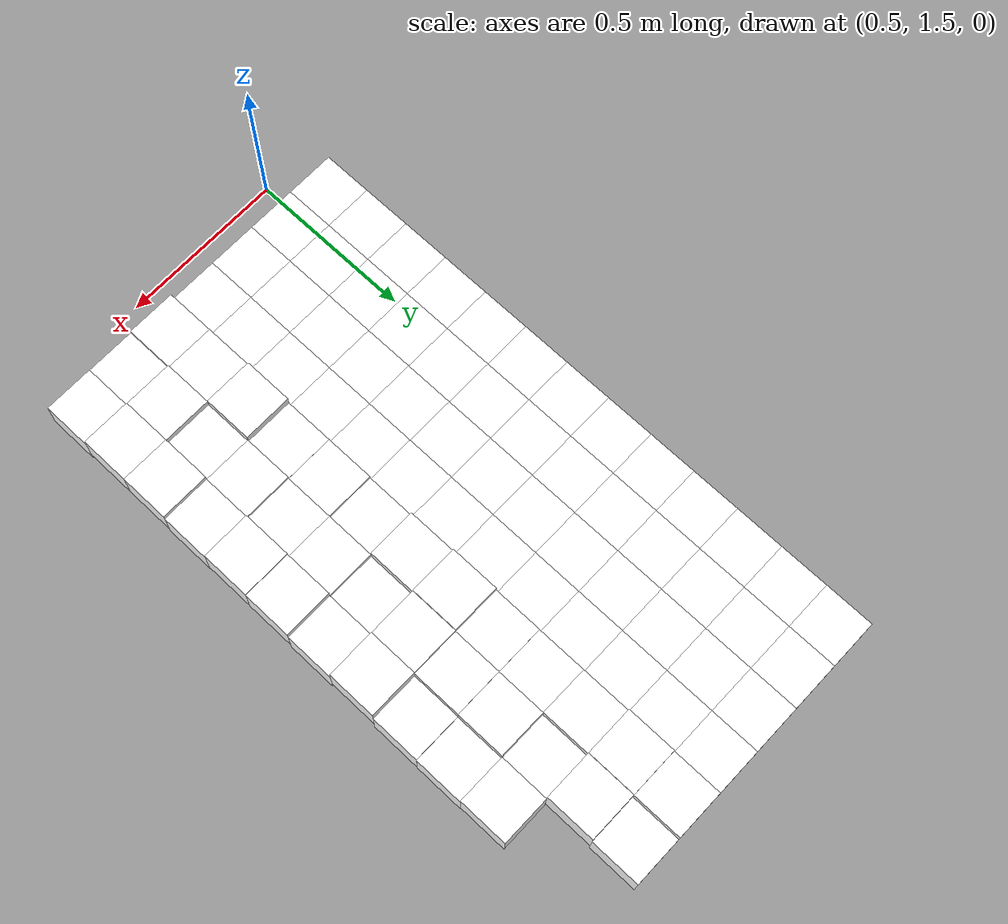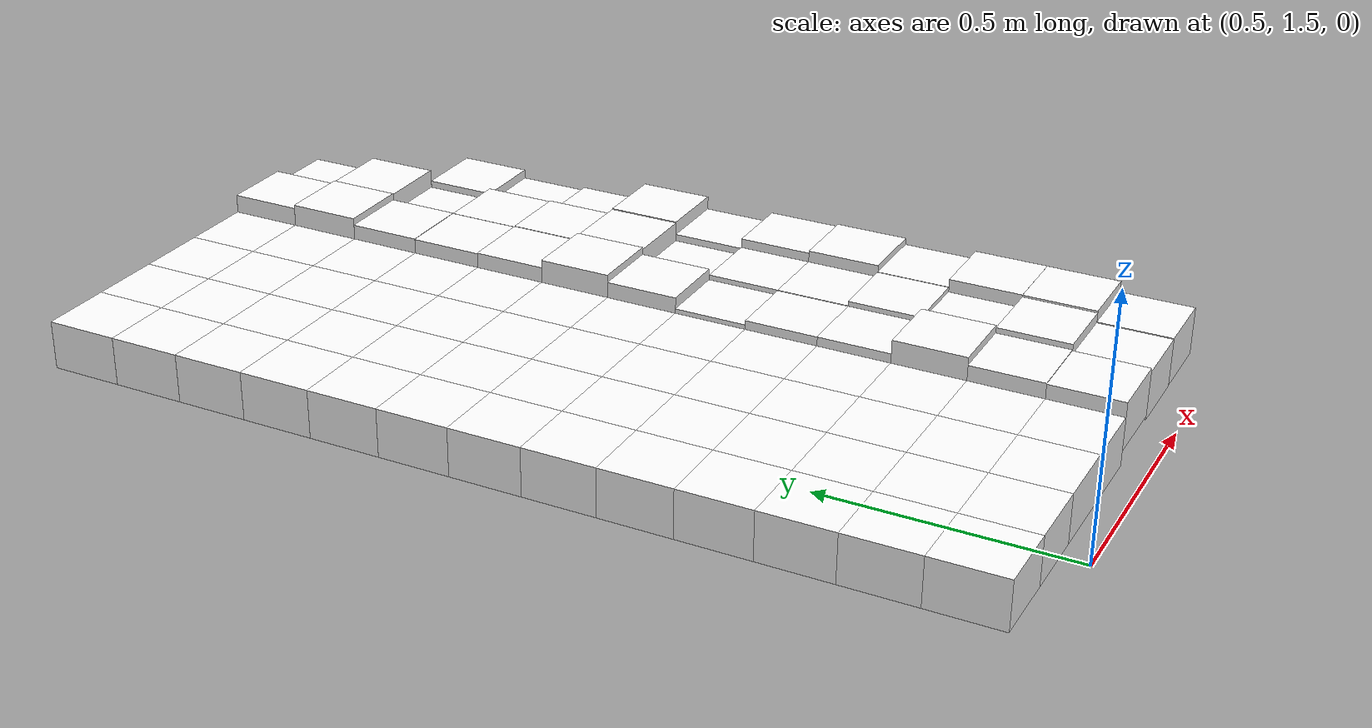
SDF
<sdf version="1.7">
 <world name="default">
  <include><uri>model://sun</uri></include>
  <model name="static_environment">
   <static>true</static>
   <link name="region_156">
    <pose>0.39999999999999947 1.65 0.0 0.0 0.0 0.0</pose>
    <collision name="region_156_collision">
     <geometry><box><size>0.15 0.15 0.1</size></box></geometry>
     <surface><friction><ode><mu>1.0</mu><mu2>1.0</mu2></ode></friction></surface>
    </collision>
    <visual name="region_156_visual">
     <geometry><box><size>0.15 0.15 0.1</size></box></geometry>
     <material><ambient>1.0 1.0 1.0 1.0</ambient><diffuse>1.0 1.0 1.0 1.0</diffuse></material>
    </visual>
   </link>
   <link name="region_157">
    <pose>0.5499999999999994 1.65 0.0 0.0 0.0 0.0</pose>
    <collision name="region_157_collision">
     <geometry><box><size>0.15 0.15 0.1</size></box></geometry>
     <surface><friction><ode><mu>1.0</mu><mu2>1.0</mu2></ode></friction></surface>
    </collision>
    <visual name="region_157_visual">
     <geometry><box><size>0.15 0.15 0.1</size></box></geometry>
     <material><ambient>1.0 1.0 1.0 1.0</ambient><diffuse>1.0 1.0 1.0 1.0</diffuse></material>
    </visual>
   </link>
   <link name="region_158">
    <pose>0.6999999999999993 1.65 0.0 0.0 0.0 0.0</pose>
    <collision name="region_158_collision">
     <geometry><box><size>0.15 0.15 0.1</size></box></geometry>
     <surface><friction><ode><mu>1.0</mu><mu2>1.0</mu2></ode></friction></surface>
    </collision>
    <visual name="region_158_visual">
     <geometry><box><size>0.15 0.15 0.1</size></box></geometry>
     <material><ambient>1.0 1.0 1.0 1.0</ambient><diffuse>1.0 1.0 1.0 1.0</diffuse></material>
    </visual>
   </link>
   <link name="region_159">
    <pose>0.8499999999999992 1.65 0.0 0.0 0.0 0.0</pose>
    <collision name="region_159_collision">
     <geometry><box><size>0.15 0.15 0.1</size></box></geometry>
     <surface><friction><ode><mu>1.0</mu><mu2>1.0</mu2></ode></friction></surface>
    </collision>
    <visual name="region_159_visual">
     <geometry><box><size>0.15 0.15 0.1</size></box></geometry>
     <material><ambient>1.0 1.0 1.0 1.0</ambient><diffuse>1.0 1.0 1.0 1.0</diffuse></material>
    </visual>
   </link>
   <link name="region_176">
    <pose>0.39999999999999947 1.7999999999999998 0.0 0.0 0.0 0.0</pose>
    <collision name="region_176_collision">
     <geometry><box><size>0.15 0.15 0.1</size></box></geometry>
     <surface><friction><ode><mu>1.0</mu><mu2>1.0</mu2></ode></friction></surface>
    </collision>
    <visual name="region_176_visual">
     <geometry><box><size>0.15 0.15 0.1</size></box></geometry>
     <material><ambient>1.0 1.0 1.0 1.0</ambient><diffuse>1.0 1.0 1.0 1.0</diffuse></material>
    </visual>
   </link>
   <link name="region_177">
    <pose>0.5499999999999994 1.7999999999999998 0.0 0.0 0.0 0.0</pose>
    <collision name="region_177_collision">
     <geometry><box><size>0.15 0.15 0.1</size></box></geometry>
     <surface><friction><ode><mu>1.0</mu><mu2>1.0</mu2></ode></friction></surface>
    </collision>
    <visual name="region_177_visual">
     <geometry><box><size>0.15 0.15 0.1</size></box></geometry>
     <material><ambient>1.0 1.0 1.0 1.0</ambient><diffuse>1.0 1.0 1.0 1.0</diffuse></material>
    </visual>
   </link>
   <link name="region_178">
    <pose>0.6999999999999993 1.7999999999999998 0.0 0.0 0.0 0.0</pose>
    <collision name="region_178_collision">
     <geometry><box><size>0.15 0.15 0.1</size></box></geometry>
     <surface><friction><ode><mu>1.0</mu><mu2>1.0</mu2></ode></friction></surface>
    </collision>
    <visual name="region_178_visual">
     <geometry><box><size>0.15 0.15 0.1</size></box></geometry>
     <material><ambient>1.0 1.0 1.0 1.0</ambient><diffuse>1.0 1.0 1.0 1.0</diffuse></material>
    </visual>
   </link>
   <link name="region_179">
    <pose>0.8499999999999992 1.7999999999999998 0.0 0.0 0.0 0.0</pose>
    <collision name="region_179_collision">
     <geometry><box><size>0.15 0.15 0.1</size></box></geometry>
     <surface><friction><ode><mu>1.0</mu><mu2>1.0</mu2></ode></friction></surface>
    </collision>
    <visual name="region_179_visual">
     <geometry><box><size>0.15 0.15 0.1</size></box></geometry>
     <material><ambient>1.0 1.0 1.0 1.0</ambient><diffuse>1.0 1.0 1.0 1.0</diffuse></material>
    </visual>
   </link>
   <link name="region_196">
    <pose>0.39999999999999947 1.9499999999999997 0.0 0.0 0.0 0.0</pose>
    <collision name="region_196_collision">
     <geometry><box><size>0.15 0.15 0.1</size></box></geometry>
     <surface><friction><ode><mu>1.0</mu><mu2>1.0</mu2></ode></friction></surface>
    </collision>
    <visual name="region_196_visual">
     <geometry><box><size>0.15 0.15 0.1</size></box></geometry>
     <material><ambient>1.0 1.0 1.0 1.0</ambient><diffuse>1.0 1.0 1.0 1.0</diffuse></material>
    </visual>
   </link>
   <link name="region_197">
    <pose>0.5499999999999994 1.9499999999999997 0.0 0.0 0.0 0.0</pose>
    <collision name="region_197_collision">
     <geometry><box><size>0.15 0.15 0.1</size></box></geometry>
     <surface><friction><ode><mu>1.0</mu><mu2>1.0</mu2></ode></friction></surface>
    </collision>
    <visual name="region_197_visual">
     <geometry><box><size>0.15 0.15 0.1</size></box></geometry>
     <material><ambient>1.0 1.0 1.0 1.0</ambient><diffuse>1.0 1.0 1.0 1.0</diffuse></material>
    </visual>
   </link>
   <link name="region_198">
    <pose>0.6999999999999993 1.9499999999999997 0.0 0.0 0.0 0.0</pose>
    <collision name="region_198_collision">
     <geometry><box><size>0.15 0.15 0.1</size></box></geometry>
     <surface><friction><ode><mu>1.0</mu><mu2>1.0</mu2></ode></friction></surface>
    </collision>
    <visual name="region_198_visual">
     <geometry><box><size>0.15 0.15 0.1</size></box></geometry>
     <material><ambient>1.0 1.0 1.0 1.0</ambient><diffuse>1.0 1.0 1.0 1.0</diffuse></material>
    </visual>
   </link>
   <link name="region_199">
    <pose>0.8499999999999992 1.9499999999999997 0.0 0.0 0.0 0.0</pose>
    <collision name="region_199_collision">
     <geometry><box><size>0.15 0.15 0.1</size></box></geometry>
     <surface><friction><ode><mu>1.0</mu><mu2>1.0</mu2></ode></friction></surface>
    </collision>
    <visual name="region_199_visual">
     <geometry><box><size>0.15 0.15 0.1</size></box></geometry>
     <material><ambient>1.0 1.0 1.0 1.0</ambient><diffuse>1.0 1.0 1.0 1.0</diffuse></material>
    </visual>
   </link>
   <link name="region_216">
    <pose>0.39999999999999947 2.0999999999999996 0.0 0.0 0.0 0.0</pose>
    <collision name="region_216_collision">
     <geometry><box><size>0.15 0.15 0.1</size></box></geometry>
     <surface><friction><ode><mu>1.0</mu><mu2>1.0</mu2></ode></friction></surface>
    </collision>
    <visual name="region_216_visual">
     <geometry><box><size>0.15 0.15 0.1</size></box></geometry>
     <material><ambient>1.0 1.0 1.0 1.0</ambient><diffuse>1.0 1.0 1.0 1.0</diffuse></material>
    </visual>
   </link>
   <link name="region_217">
    <pose>0.5499999999999994 2.0999999999999996 0.0 0.0 0.0 0.0</pose>
    <collision name="region_217_collision">
     <geometry><box><size>0.15 0.15 0.1</size></box></geometry>
     <surface><friction><ode><mu>1.0</mu><mu2>1.0</mu2></ode></friction></surface>
    </collision>
    <visual name="region_217_visual">
     <geometry><box><size>0.15 0.15 0.1</size></box></geometry>
     <material><ambient>1.0 1.0 1.0 1.0</ambient><diffuse>1.0 1.0 1.0 1.0</diffuse></material>
    </visual>
   </link>
   <link name="region_218">
    <pose>0.6999999999999993 2.0999999999999996 0.0 0.0 0.0 0.0</pose>
    <collision name="region_218_collision">
     <geometry><box><size>0.15 0.15 0.1</size></box></geometry>
     <surface><friction><ode><mu>1.0</mu><mu2>1.0</mu2></ode></friction></surface>
    </collision>
    <visual name="region_218_visual">
     <geometry><box><size>0.15 0.15 0.1</size></box></geometry>
     <material><ambient>1.0 1.0 1.0 1.0</ambient><diffuse>1.0 1.0 1.0 1.0</diffuse></material>
    </visual>
   </link>
   <link name="region_219">
    <pose>0.8499999999999992 2.0999999999999996 0.0 0.0 0.0 0.0</pose>
    <collision name="region_219_collision">
     <geometry><box><size>0.15 0.15 0.1</size></box></geometry>
     <surface><friction><ode><mu>1.0</mu><mu2>1.0</mu2></ode></friction></surface>
    </collision>
    <visual name="region_219_visual">
     <geometry><box><size>0.15 0.15 0.1</size></box></geometry>
     <material><ambient>1.0 1.0 1.0 1.0</ambient><diffuse>1.0 1.0 1.0 1.0</diffuse></material>
    </visual>
   </link>
   <link name="region_236">
    <pose>0.39999999999999947 2.2499999999999996 0.0 0.0 0.0 0.0</pose>
    <collision name="region_236_collision">
     <geometry><box><size>0.15 0.15 0.1</size></box></geometry>
     <surface><friction><ode><mu>1.0</mu><mu2>1.0</mu2></ode></friction></surface>
    </collision>
    <visual name="region_236_visual">
     <geometry><box><size>0.15 0.15 0.1</size></box></geometry>
     <material><ambient>1.0 1.0 1.0 1.0</ambient><diffuse>1.0 1.0 1.0 1.0</diffuse></material>
    </visual>
   </link>
   <link name="region_237">
    <pose>0.5499999999999994 2.2499999999999996 0.0 0.0 0.0 0.0</pose>
    <collision name="region_237_collision">
     <geometry><box><size>0.15 0.15 0.1</size></box></geometry>
     <surface><friction><ode><mu>1.0</mu><mu2>1.0</mu2></ode></friction></surface>
    </collision>
    <visual name="region_237_visual">
     <geometry><box><size>0.15 0.15 0.1</size></box></geometry>
     <material><ambient>1.0 1.0 1.0 1.0</ambient><diffuse>1.0 1.0 1.0 1.0</diffuse></material>
    </visual>
   </link>
   <link name="region_238">
    <pose>0.6999999999999993 2.2499999999999996 0.0 0.0 0.0 0.0</pose>
    <collision name="region_238_collision">
     <geometry><box><size>0.15 0.15 0.1</size></box></geometry>
     <surface><friction><ode><mu>1.0</mu><mu2>1.0</mu2></ode></friction></surface>
    </collision>
    <visual name="region_238_visual">
     <geometry><box><size>0.15 0.15 0.1</size></box></geometry>
     <material><ambient>1.0 1.0 1.0 1.0</ambient><diffuse>1.0 1.0 1.0 1.0</diffuse></material>
    </visual>
   </link>
   <link name="region_239">
    <pose>0.8499999999999992 2.2499999999999996 0.0 0.0 0.0 0.0</pose>
    <collision name="region_239_collision">
     <geometry><box><size>0.15 0.15 0.1</size></box></geometry>
     <surface><friction><ode><mu>1.0</mu><mu2>1.0</mu2></ode></friction></surface>
    </collision>
    <visual name="region_239_visual">
     <geometry><box><size>0.15 0.15 0.1</size></box></geometry>
     <material><ambient>1.0 1.0 1.0 1.0</ambient><diffuse>1.0 1.0 1.0 1.0</diffuse></material>
    </visual>
   </link>
   <link name="region_256">
    <pose>0.39999999999999947 2.3999999999999995 0.0 0.0 0.0 0.0</pose>
    <collision name="region_256_collision">
     <geometry><box><size>0.15 0.15 0.1</size></box></geometry>
     <surface><friction><ode><mu>1.0</mu><mu2>1.0</mu2></ode></friction></surface>
    </collision>
    <visual name="region_256_visual">
     <geometry><box><size>0.15 0.15 0.1</size></box></geometry>
     <material><ambient>1.0 1.0 1.0 1.0</ambient><diffuse>1.0 1.0 1.0 1.0</diffuse></material>
    </visual>
   </link>
   <link name="region_257">
    <pose>0.5499999999999994 2.3999999999999995 0.0 0.0 0.0 0.0</pose>
    <collision name="region_257_collision">
     <geometry><box><size>0.15 0.15 0.1</size></box></geometry>
     <surface><friction><ode><mu>1.0</mu><mu2>1.0</mu2></ode></friction></surface>
    </collision>
    <visual name="region_257_visual">
     <geometry><box><size>0.15 0.15 0.1</size></box></geometry>
     <material><ambient>1.0 1.0 1.0 1.0</ambient><diffuse>1.0 1.0 1.0 1.0</diffuse></material>
    </visual>
   </link>
   <link name="region_258">
    <pose>0.6999999999999993 2.3999999999999995 0.0 0.0 0.0 0.0</pose>
    <collision name="region_258_collision">
     <geometry><box><size>0.15 0.15 0.1</size></box></geometry>
     <surface><friction><ode><mu>1.0</mu><mu2>1.0</mu2></ode></friction></surface>
    </collision>
    <visual name="region_258_visual">
     <geometry><box><size>0.15 0.15 0.1</size></box></geometry>
     <material><ambient>1.0 1.0 1.0 1.0</ambient><diffuse>1.0 1.0 1.0 1.0</diffuse></material>
    </visual>
   </link>
   <link name="region_259">
    <pose>0.8499999999999992 2.3999999999999995 0.0 0.0 0.0 0.0</pose>
    <collision name="region_259_collision">
     <geometry><box><size>0.15 0.15 0.1</size></box></geometry>
     <surface><friction><ode><mu>1.0</mu><mu2>1.0</mu2></ode></friction></surface>
    </collision>
    <visual name="region_259_visual">
     <geometry><box><size>0.15 0.15 0.1</size></box></geometry>
     <material><ambient>1.0 1.0 1.0 1.0</ambient><diffuse>1.0 1.0 1.0 1.0</diffuse></material>
    </visual>
   </link>
   <link name="region_276">
    <pose>0.39999999999999947 2.5499999999999994 0.0 0.0 0.0 0.0</pose>
    <collision name="region_276_collision">
     <geometry><box><size>0.15 0.15 0.1</size></box></geometry>
     <surface><friction><ode><mu>1.0</mu><mu2>1.0</mu2></ode></friction></surface>
    </collision>
    <visual name="region_276_visual">
     <geometry><box><size>0.15 0.15 0.1</size></box></geometry>
     <material><ambient>1.0 1.0 1.0 1.0</ambient><diffuse>1.0 1.0 1.0 1.0</diffuse></material>
    </visual>
   </link>
   <link name="region_277">
    <pose>0.5499999999999994 2.5499999999999994 0.0 0.0 0.0 0.0</pose>
    <collision name="region_277_collision">
     <geometry><box><size>0.15 0.15 0.1</size></box></geometry>
     <surface><friction><ode><mu>1.0</mu><mu2>1.0</mu2></ode></friction></surface>
    </collision>
    <visual name="region_277_visual">
     <geometry><box><size>0.15 0.15 0.1</size></box></geometry>
     <material><ambient>1.0 1.0 1.0 1.0</ambient><diffuse>1.0 1.0 1.0 1.0</diffuse></material>
    </visual>
   </link>
   <link name="region_278">
    <pose>0.6999999999999993 2.5499999999999994 0.0 0.0 0.0 0.0</pose>
    <collision name="region_278_collision">
     <geometry><box><size>0.15 0.15 0.1</size></box></geometry>
     <surface><friction><ode><mu>1.0</mu><mu2>1.0</mu2></ode></friction></surface>
    </collision>
    <visual name="region_278_visual">
     <geometry><box><size>0.15 0.15 0.1</size></box></geometry>
     <material><ambient>1.0 1.0 1.0 1.0</ambient><diffuse>1.0 1.0 1.0 1.0</diffuse></material>
    </visual>
   </link>
   <link name="region_279">
    <pose>0.8499999999999992 2.5499999999999994 0.0 0.0 0.0 0.0</pose>
    <collision name="region_279_collision">
     <geometry><box><size>0.15 0.15 0.1</size></box></geometry>
     <surface><friction><ode><mu>1.0</mu><mu2>1.0</mu2></ode></friction></surface>
    </collision>
    <visual name="region_279_visual">
     <geometry><box><size>0.15 0.15 0.1</size></box></geometry>
     <material><ambient>1.0 1.0 1.0 1.0</ambient><diffuse>1.0 1.0 1.0 1.0</diffuse></material>
    </visual>
   </link>
   <link name="region_296">
    <pose>0.39999999999999947 2.6999999999999997 0.0 0.0 0.0 0.0</pose>
    <collision name="region_296_collision">
     <geometry><box><size>0.15 0.15 0.1</size></box></geometry>
     <surface><friction><ode><mu>1.0</mu><mu2>1.0</mu2></ode></friction></surface>
    </collision>
    <visual name="region_296_visual">
     <geometry><box><size>0.15 0.15 0.1</size></box></geometry>
     <material><ambient>1.0 1.0 1.0 1.0</ambient><diffuse>1.0 1.0 1.0 1.0</diffuse></material>
    </visual>
   </link>
   <link name="region_297">
    <pose>0.5499999999999994 2.6999999999999997 0.0 0.0 0.0 0.0</pose>
    <collision name="region_297_collision">
     <geometry><box><size>0.15 0.15 0.1</size></box></geometry>
     <surface><friction><ode><mu>1.0</mu><mu2>1.0</mu2></ode></friction></surface>
    </collision>
    <visual name="region_297_visual">
     <geometry><box><size>0.15 0.15 0.1</size></box></geometry>
     <material><ambient>1.0 1.0 1.0 1.0</ambient><diffuse>1.0 1.0 1.0 1.0</diffuse></material>
    </visual>
   </link>
   <link name="region_298">
    <pose>0.6999999999999993 2.6999999999999997 0.0 0.0 0.0 0.0</pose>
    <collision name="region_298_collision">
     <geometry><box><size>0.15 0.15 0.1</size></box></geometry>
     <surface><friction><ode><mu>1.0</mu><mu2>1.0</mu2></ode></friction></surface>
    </collision>
    <visual name="region_298_visual">
     <geometry><box><size>0.15 0.15 0.1</size></box></geometry>
     <material><ambient>1.0 1.0 1.0 1.0</ambient><diffuse>1.0 1.0 1.0 1.0</diffuse></material>
    </visual>
   </link>
   <link name="region_299">
    <pose>0.8499999999999992 2.6999999999999997 0.0 0.0 0.0 0.0</pose>
    <collision name="region_299_collision">
     <geometry><box><size>0.15 0.15 0.1</size></box></geometry>
     <surface><friction><ode><mu>1.0</mu><mu2>1.0</mu2></ode></friction></surface>
    </collision>
    <visual name="region_299_visual">
     <geometry><box><size>0.15 0.15 0.1</size></box></geometry>
     <material><ambient>1.0 1.0 1.0 1.0</ambient><diffuse>1.0 1.0 1.0 1.0</diffuse></material>
    </visual>
   </link>
   <link name="region_316">
    <pose>0.39999999999999947 2.8499999999999996 0.0 0.0 0.0 0.0</pose>
    <collision name="region_316_collision">
     <geometry><box><size>0.15 0.15 0.1</size></box></geometry>
     <surface><friction><ode><mu>1.0</mu><mu2>1.0</mu2></ode></friction></surface>
    </collision>
    <visual name="region_316_visual">
     <geometry><box><size>0.15 0.15 0.1</size></box></geometry>
     <material><ambient>1.0 1.0 1.0 1.0</ambient><diffuse>1.0 1.0 1.0 1.0</diffuse></material>
    </visual>
   </link>
   <link name="region_317">
    <pose>0.5499999999999994 2.8499999999999996 0.0 0.0 0.0 0.0</pose>
    <collision name="region_317_collision">
     <geometry><box><size>0.15 0.15 0.1</size></box></geometry>
     <surface><friction><ode><mu>1.0</mu><mu2>1.0</mu2></ode></friction></surface>
    </collision>
    <visual name="region_317_visual">
     <geometry><box><size>0.15 0.15 0.1</size></box></geometry>
     <material><ambient>1.0 1.0 1.0 1.0</ambient><diffuse>1.0 1.0 1.0 1.0</diffuse></material>
    </visual>
   </link>
   <link name="region_318">
    <pose>0.6999999999999993 2.8499999999999996 0.0 0.0 0.0 0.0</pose>
    <collision name="region_318_collision">
     <geometry><box><size>0.15 0.15 0.1</size></box></geometry>
     <surface><friction><ode><mu>1.0</mu><mu2>1.0</mu2></ode></friction></surface>
    </collision>
    <visual name="region_318_visual">
     <geometry><box><size>0.15 0.15 0.1</size></box></geometry>
     <material><ambient>1.0 1.0 1.0 1.0</ambient><diffuse>1.0 1.0 1.0 1.0</diffuse></material>
    </visual>
   </link>
   <link name="region_319">
    <pose>0.8499999999999992 2.8499999999999996 0.0 0.0 0.0 0.0</pose>
    <collision name="region_319_collision">
     <geometry><box><size>0.15 0.15 0.1</size></box></geometry>
     <surface><friction><ode><mu>1.0</mu><mu2>1.0</mu2></ode></friction></surface>
    </collision>
    <visual name="region_319_visual">
     <geometry><box><size>0.15 0.15 0.1</size></box></geometry>
     <material><ambient>1.0 1.0 1.0 1.0</ambient><diffuse>1.0 1.0 1.0 1.0</diffuse></material>
    </visual>
   </link>
   <link name="region_336">
    <pose>0.39999999999999947 2.9999999999999996 0.0 0.0 0.0 0.0</pose>
    <collision name="region_336_collision">
     <geometry><box><size>0.15 0.15 0.1</size></box></geometry>
     <surface><friction><ode><mu>1.0</mu><mu2>1.0</mu2></ode></friction></surface>
    </collision>
    <visual name="region_336_visual">
     <geometry><box><size>0.15 0.15 0.1</size></box></geometry>
     <material><ambient>1.0 1.0 1.0 1.0</ambient><diffuse>1.0 1.0 1.0 1.0</diffuse></material>
    </visual>
   </link>
   <link name="region_337">
    <pose>0.5499999999999994 2.9999999999999996 0.0 0.0 0.0 0.0</pose>
    <collision name="region_337_collision">
     <geometry><box><size>0.15 0.15 0.1</size></box></geometry>
     <surface><friction><ode><mu>1.0</mu><mu2>1.0</mu2></ode></friction></surface>
    </collision>
    <visual name="region_337_visual">
     <geometry><box><size>0.15 0.15 0.1</size></box></geometry>
     <material><ambient>1.0 1.0 1.0 1.0</ambient><diffuse>1.0 1.0 1.0 1.0</diffuse></material>
    </visual>
   </link>
   <link name="region_338">
    <pose>0.6999999999999993 2.9999999999999996 0.0 0.0 0.0 0.0</pose>
    <collision name="region_338_collision">
     <geometry><box><size>0.15 0.15 0.1</size></box></geometry>
     <surface><friction><ode><mu>1.0</mu><mu2>1.0</mu2></ode></friction></surface>
    </collision>
    <visual name="region_338_visual">
     <geometry><box><size>0.15 0.15 0.1</size></box></geometry>
     <material><ambient>1.0 1.0 1.0 1.0</ambient><diffuse>1.0 1.0 1.0 1.0</diffuse></material>
    </visual>
   </link>
   <link name="region_339">
    <pose>0.8499999999999992 2.9999999999999996 0.0 0.0 0.0 0.0</pose>
    <collision name="region_339_collision">
     <geometry><box><size>0.15 0.15 0.1</size></box></geometry>
     <surface><friction><ode><mu>1.0</mu><mu2>1.0</mu2></ode></friction></surface>
    </collision>
    <visual name="region_339_visual">
     <geometry><box><size>0.15 0.15 0.1</size></box></geometry>
     <material><ambient>1.0 1.0 1.0 1.0</ambient><diffuse>1.0 1.0 1.0 1.0</diffuse></material>
    </visual>
   </link>
   <link name="region_356">
    <pose>0.39999999999999947 3.1499999999999995 0.0 0.0 0.0 0.0</pose>
    <collision name="region_356_collision">
     <geometry><box><size>0.15 0.15 0.1</size></box></geometry>
     <surface><friction><ode><mu>1.0</mu><mu2>1.0</mu2></ode></friction></surface>
    </collision>
    <visual name="region_356_visual">
     <geometry><box><size>0.15 0.15 0.1</size></box></geometry>
     <material><ambient>1.0 1.0 1.0 1.0</ambient><diffuse>1.0 1.0 1.0 1.0</diffuse></material>
    </visual>
   </link>
   <link name="region_357">
    <pose>0.5499999999999994 3.1499999999999995 0.0 0.0 0.0 0.0</pose>
    <collision name="region_357_collision">
     <geometry><box><size>0.15 0.15 0.1</size></box></geometry>
     <surface><friction><ode><mu>1.0</mu><mu2>1.0</mu2></ode></friction></surface>
    </collision>
    <visual name="region_357_visual">
     <geometry><box><size>0.15 0.15 0.1</size></box></geometry>
     <material><ambient>1.0 1.0 1.0 1.0</ambient><diffuse>1.0 1.0 1.0 1.0</diffuse></material>
    </visual>
   </link>
   <link name="region_358">
    <pose>0.6999999999999993 3.1499999999999995 0.0 0.0 0.0 0.0</pose>
    <collision name="region_358_collision">
     <geometry><box><size>0.15 0.15 0.1</size></box></geometry>
     <surface><friction><ode><mu>1.0</mu><mu2>1.0</mu2></ode></friction></surface>
    </collision>
    <visual name="region_358_visual">
     <geometry><box><size>0.15 0.15 0.1</size></box></geometry>
     <material><ambient>1.0 1.0 1.0 1.0</ambient><diffuse>1.0 1.0 1.0 1.0</diffuse></material>
    </visual>
   </link>
   <link name="region_359">
    <pose>0.8499999999999992 3.1499999999999995 0.0 0.0 0.0 0.0</pose>
    <collision name="region_359_collision">
     <geometry><box><size>0.15 0.15 0.1</size></box></geometry>
     <surface><friction><ode><mu>1.0</mu><mu2>1.0</mu2></ode></friction></surface>
    </collision>
    <visual name="region_359_visual">
     <geometry><box><size>0.15 0.15 0.1</size></box></geometry>
     <material><ambient>1.0 1.0 1.0 1.0</ambient><diffuse>1.0 1.0 1.0 1.0</diffuse></material>
    </visual>
   </link>
   <link name="region_376">
    <pose>0.39999999999999947 3.2999999999999994 0.0 0.0 0.0 0.0</pose>
    <collision name="region_376_collision">
     <geometry><box><size>0.15 0.15 0.1</size></box></geometry>
     <surface><friction><ode><mu>1.0</mu><mu2>1.0</mu2></ode></friction></surface>
    </collision>
    <visual name="region_376_visual">
     <geometry><box><size>0.15 0.15 0.1</size></box></geometry>
     <material><ambient>1.0 1.0 1.0 1.0</ambient><diffuse>1.0 1.0 1.0 1.0</diffuse></material>
    </visual>
   </link>
   <link name="region_377">
    <pose>0.5499999999999994 3.2999999999999994 0.0 0.0 0.0 0.0</pose>
    <collision name="region_377_collision">
     <geometry><box><size>0.15 0.15 0.1</size></box></geometry>
     <surface><friction><ode><mu>1.0</mu><mu2>1.0</mu2></ode></friction></surface>
    </collision>
    <visual name="region_377_visual">
     <geometry><box><size>0.15 0.15 0.1</size></box></geometry>
     <material><ambient>1.0 1.0 1.0 1.0</ambient><diffuse>1.0 1.0 1.0 1.0</diffuse></material>
    </visual>
   </link>
   <link name="region_378">
    <pose>0.6999999999999993 3.2999999999999994 0.0 0.0 0.0 0.0</pose>
    <collision name="region_378_collision">
     <geometry><box><size>0.15 0.15 0.1</size></box></geometry>
     <surface><friction><ode><mu>1.0</mu><mu2>1.0</mu2></ode></friction></surface>
    </collision>
    <visual name="region_378_visual">
     <geometry><box><size>0.15 0.15 0.1</size></box></geometry>
     <material><ambient>1.0 1.0 1.0 1.0</ambient><diffuse>1.0 1.0 1.0 1.0</diffuse></material>
    </visual>
   </link>
   <link name="region_379">
    <pose>0.8499999999999992 3.2999999999999994 0.0 0.0 0.0 0.0</pose>
    <collision name="region_379_collision">
     <geometry><box><size>0.15 0.15 0.1</size></box></geometry>
     <surface><friction><ode><mu>1.0</mu><mu2>1.0</mu2></ode></friction></surface>
    </collision>
    <visual name="region_379_visual">
     <geometry><box><size>0.15 0.15 0.1</size></box></geometry>
     <material><ambient>1.0 1.0 1.0 1.0</ambient><diffuse>1.0 1.0 1.0 1.0</diffuse></material>
    </visual>
   </link>
   <link name="region_396">
    <pose>0.39999999999999947 3.4499999999999993 0.0 0.0 0.0 0.0</pose>
    <collision name="region_396_collision">
     <geometry><box><size>0.15 0.15 0.1</size></box></geometry>
     <surface><friction><ode><mu>1.0</mu><mu2>1.0</mu2></ode></friction></surface>
    </collision>
    <visual name="region_396_visual">
     <geometry><box><size>0.15 0.15 0.1</size></box></geometry>
     <material><ambient>1.0 1.0 1.0 1.0</ambient><diffuse>1.0 1.0 1.0 1.0</diffuse></material>
    </visual>
   </link>
   <link name="region_397">
    <pose>0.5499999999999994 3.4499999999999993 0.0 0.0 0.0 0.0</pose>
    <collision name="region_397_collision">
     <geometry><box><size>0.15 0.15 0.1</size></box></geometry>
     <surface><friction><ode><mu>1.0</mu><mu2>1.0</mu2></ode></friction></surface>
    </collision>
    <visual name="region_397_visual">
     <geometry><box><size>0.15 0.15 0.1</size></box></geometry>
     <material><ambient>1.0 1.0 1.0 1.0</ambient><diffuse>1.0 1.0 1.0 1.0</diffuse></material>
    </visual>
   </link>
   <link name="region_398">
    <pose>0.6999999999999993 3.4499999999999993 0.0 0.0 0.0 0.0</pose>
    <collision name="region_398_collision">
     <geometry><box><size>0.15 0.15 0.1</size></box></geometry>
     <surface><friction><ode><mu>1.0</mu><mu2>1.0</mu2></ode></friction></surface>
    </collision>
    <visual name="region_398_visual">
     <geometry><box><size>0.15 0.15 0.1</size></box></geometry>
     <material><ambient>1.0 1.0 1.0 1.0</ambient><diffuse>1.0 1.0 1.0 1.0</diffuse></material>
    </visual>
   </link>
   <link name="region_399">
    <pose>0.8499999999999992 3.4499999999999993 0.0 0.0 0.0 0.0</pose>
    <collision name="region_399_collision">
     <geometry><box><size>0.15 0.15 0.1</size></box></geometry>
     <surface><friction><ode><mu>1.0</mu><mu2>1.0</mu2></ode></friction></surface>
    </collision>
    <visual name="region_399_visual">
     <geometry><box><size>0.15 0.15 0.1</size></box></geometry>
     <material><ambient>1.0 1.0 1.0 1.0</ambient><diffuse>1.0 1.0 1.0 1.0</diffuse></material>
    </visual>
   </link>
   <link name="region_470">
    <pose>1.0 1.65 0.030167780158377684 0.0 0.0 0.0</pose>
    <collision name="region_470_collision">
     <geometry><box><size>0.15 0.15 0.1</size></box></geometry>
     <surface><friction><ode><mu>1.0</mu><mu2>1.0</mu2></ode></friction></surface>
    </collision>
    <visual name="region_470_visual">
     <geometry><box><size>0.15 0.15 0.1</size></box></geometry>
     <material><ambient>1.0 1.0 1.0 1.0</ambient><diffuse>1.0 1.0 1.0 1.0</diffuse></material>
    </visual>
   </link>
   <link name="region_471">
    <pose>1.15 1.65 0.022193592809563446 0.0 0.0 0.0</pose>
    <collision name="region_471_collision">
     <geometry><box><size>0.15 0.15 0.1</size></box></geometry>
     <surface><friction><ode><mu>1.0</mu><mu2>1.0</mu2></ode></friction></surface>
    </collision>
    <visual name="region_471_visual">
     <geometry><box><size>0.15 0.15 0.1</size></box></geometry>
     <material><ambient>1.0 1.0 1.0 1.0</ambient><diffuse>1.0 1.0 1.0 1.0</diffuse></material>
    </visual>
   </link>
   <link name="region_472">
    <pose>1.2999999999999998 1.65 0.024002339166344512 0.0 0.0 0.0</pose>
    <collision name="region_472_collision">
     <geometry><box><size>0.15 0.15 0.1</size></box></geometry>
     <surface><friction><ode><mu>1.0</mu><mu2>1.0</mu2></ode></friction></surface>
    </collision>
    <visual name="region_472_visual">
     <geometry><box><size>0.15 0.15 0.1</size></box></geometry>
     <material><ambient>1.0 1.0 1.0 1.0</ambient><diffuse>1.0 1.0 1.0 1.0</diffuse></material>
    </visual>
   </link>
   <link name="region_480">
    <pose>1.0 1.7999999999999998 0.031869274757048476 0.0 0.0 0.0</pose>
    <collision name="region_480_collision">
     <geometry><box><size>0.15 0.15 0.1</size></box></geometry>
     <surface><friction><ode><mu>1.0</mu><mu2>1.0</mu2></ode></friction></surface>
    </collision>
    <visual name="region_480_visual">
     <geometry><box><size>0.15 0.15 0.1</size></box></geometry>
     <material><ambient>1.0 1.0 1.0 1.0</ambient><diffuse>1.0 1.0 1.0 1.0</diffuse></material>
    </visual>
   </link>
   <link name="region_481">
    <pose>1.15 1.7999999999999998 0.043123258114880755 0.0 0.0 0.0</pose>
    <collision name="region_481_collision">
     <geometry><box><size>0.15 0.15 0.1</size></box></geometry>
     <surface><friction><ode><mu>1.0</mu><mu2>1.0</mu2></ode></friction></surface>
    </collision>
    <visual name="region_481_visual">
     <geometry><box><size>0.15 0.15 0.1</size></box></geometry>
     <material><ambient>1.0 1.0 1.0 1.0</ambient><diffuse>1.0 1.0 1.0 1.0</diffuse></material>
    </visual>
   </link>
   <link name="region_482">
    <pose>1.2999999999999998 1.7999999999999998 0.047081885616982844 0.0 0.0 0.0</pose>
    <collision name="region_482_collision">
     <geometry><box><size>0.15 0.15 0.1</size></box></geometry>
     <surface><friction><ode><mu>1.0</mu><mu2>1.0</mu2></ode></friction></surface>
    </collision>
    <visual name="region_482_visual">
     <geometry><box><size>0.15 0.15 0.1</size></box></geometry>
     <material><ambient>1.0 1.0 1.0 1.0</ambient><diffuse>1.0 1.0 1.0 1.0</diffuse></material>
    </visual>
   </link>
   <link name="region_490">
    <pose>1.0 1.9499999999999997 0.04787087118695286 0.0 0.0 0.0</pose>
    <collision name="region_490_collision">
     <geometry><box><size>0.15 0.15 0.1</size></box></geometry>
     <surface><friction><ode><mu>1.0</mu><mu2>1.0</mu2></ode></friction></surface>
    </collision>
    <visual name="region_490_visual">
     <geometry><box><size>0.15 0.15 0.1</size></box></geometry>
     <material><ambient>1.0 1.0 1.0 1.0</ambient><diffuse>1.0 1.0 1.0 1.0</diffuse></material>
    </visual>
   </link>
   <link name="region_491">
    <pose>1.15 1.9499999999999997 0.02029791714798214 0.0 0.0 0.0</pose>
    <collision name="region_491_collision">
     <geometry><box><size>0.15 0.15 0.1</size></box></geometry>
     <surface><friction><ode><mu>1.0</mu><mu2>1.0</mu2></ode></friction></surface>
    </collision>
    <visual name="region_491_visual">
     <geometry><box><size>0.15 0.15 0.1</size></box></geometry>
     <material><ambient>1.0 1.0 1.0 1.0</ambient><diffuse>1.0 1.0 1.0 1.0</diffuse></material>
    </visual>
   </link>
   <link name="region_492">
    <pose>1.2999999999999998 1.9499999999999997 0.04732779111814016 0.0 0.0 0.0</pose>
    <collision name="region_492_collision">
     <geometry><box><size>0.15 0.15 0.1</size></box></geometry>
     <surface><friction><ode><mu>1.0</mu><mu2>1.0</mu2></ode></friction></surface>
    </collision>
    <visual name="region_492_visual">
     <geometry><box><size>0.15 0.15 0.1</size></box></geometry>
     <material><ambient>1.0 1.0 1.0 1.0</ambient><diffuse>1.0 1.0 1.0 1.0</diffuse></material>
    </visual>
   </link>
   <link name="region_500">
    <pose>1.0 2.0999999999999996 0.01926084901215371 0.0 0.0 0.0</pose>
    <collision name="region_500_collision">
     <geometry><box><size>0.15 0.15 0.1</size></box></geometry>
     <surface><friction><ode><mu>1.0</mu><mu2>1.0</mu2></ode></friction></surface>
    </collision>
    <visual name="region_500_visual">
     <geometry><box><size>0.15 0.15 0.1</size></box></geometry>
     <material><ambient>1.0 1.0 1.0 1.0</ambient><diffuse>1.0 1.0 1.0 1.0</diffuse></material>
    </visual>
   </link>
   <link name="region_501">
    <pose>1.15 2.0999999999999996 0.02978709471434532 0.0 0.0 0.0</pose>
    <collision name="region_501_collision">
     <geometry><box><size>0.15 0.15 0.1</size></box></geometry>
     <surface><friction><ode><mu>1.0</mu><mu2>1.0</mu2></ode></friction></surface>
    </collision>
    <visual name="region_501_visual">
     <geometry><box><size>0.15 0.15 0.1</size></box></geometry>
     <material><ambient>1.0 1.0 1.0 1.0</ambient><diffuse>1.0 1.0 1.0 1.0</diffuse></material>
    </visual>
   </link>
   <link name="region_502">
    <pose>1.2999999999999998 2.0999999999999996 0.030540352775220464 0.0 0.0 0.0</pose>
    <collision name="region_502_collision">
     <geometry><box><size>0.15 0.15 0.1</size></box></geometry>
     <surface><friction><ode><mu>1.0</mu><mu2>1.0</mu2></ode></friction></surface>
    </collision>
    <visual name="region_502_visual">
     <geometry><box><size>0.15 0.15 0.1</size></box></geometry>
     <material><ambient>1.0 1.0 1.0 1.0</ambient><diffuse>1.0 1.0 1.0 1.0</diffuse></material>
    </visual>
   </link>
   <link name="region_510">
    <pose>1.0 2.2499999999999996 0.018872039118032237 0.0 0.0 0.0</pose>
    <collision name="region_510_collision">
     <geometry><box><size>0.15 0.15 0.1</size></box></geometry>
     <surface><friction><ode><mu>1.0</mu><mu2>1.0</mu2></ode></friction></surface>
    </collision>
    <visual name="region_510_visual">
     <geometry><box><size>0.15 0.15 0.1</size></box></geometry>
     <material><ambient>1.0 1.0 1.0 1.0</ambient><diffuse>1.0 1.0 1.0 1.0</diffuse></material>
    </visual>
   </link>
   <link name="region_511">
    <pose>1.15 2.2499999999999996 0.020142360508633675 0.0 0.0 0.0</pose>
    <collision name="region_511_collision">
     <geometry><box><size>0.15 0.15 0.1</size></box></geometry>
     <surface><friction><ode><mu>1.0</mu><mu2>1.0</mu2></ode></friction></surface>
    </collision>
    <visual name="region_511_visual">
     <geometry><box><size>0.15 0.15 0.1</size></box></geometry>
     <material><ambient>1.0 1.0 1.0 1.0</ambient><diffuse>1.0 1.0 1.0 1.0</diffuse></material>
    </visual>
   </link>
   <link name="region_512">
    <pose>1.2999999999999998 2.2499999999999996 0.044258884721639746 0.0 0.0 0.0</pose>
    <collision name="region_512_collision">
     <geometry><box><size>0.15 0.15 0.1</size></box></geometry>
     <surface><friction><ode><mu>1.0</mu><mu2>1.0</mu2></ode></friction></surface>
    </collision>
    <visual name="region_512_visual">
     <geometry><box><size>0.15 0.15 0.1</size></box></geometry>
     <material><ambient>1.0 1.0 1.0 1.0</ambient><diffuse>1.0 1.0 1.0 1.0</diffuse></material>
    </visual>
   </link>
   <link name="region_520">
    <pose>1.0 2.3999999999999995 0.00958553861277779 0.0 0.0 0.0</pose>
    <collision name="region_520_collision">
     <geometry><box><size>0.15 0.15 0.1</size></box></geometry>
     <surface><friction><ode><mu>1.0</mu><mu2>1.0</mu2></ode></friction></surface>
    </collision>
    <visual name="region_520_visual">
     <geometry><box><size>0.15 0.15 0.1</size></box></geometry>
     <material><ambient>1.0 1.0 1.0 1.0</ambient><diffuse>1.0 1.0 1.0 1.0</diffuse></material>
    </visual>
   </link>
   <link name="region_521">
    <pose>1.15 2.3999999999999995 0.02012945739479824 0.0 0.0 0.0</pose>
    <collision name="region_521_collision">
     <geometry><box><size>0.15 0.15 0.1</size></box></geometry>
     <surface><friction><ode><mu>1.0</mu><mu2>1.0</mu2></ode></friction></surface>
    </collision>
    <visual name="region_521_visual">
     <geometry><box><size>0.15 0.15 0.1</size></box></geometry>
     <material><ambient>1.0 1.0 1.0 1.0</ambient><diffuse>1.0 1.0 1.0 1.0</diffuse></material>
    </visual>
   </link>
   <link name="region_522">
    <pose>1.2999999999999998 2.3999999999999995 0.03934222326238623 0.0 0.0 0.0</pose>
    <collision name="region_522_collision">
     <geometry><box><size>0.15 0.15 0.1</size></box></geometry>
     <surface><friction><ode><mu>1.0</mu><mu2>1.0</mu2></ode></friction></surface>
    </collision>
    <visual name="region_522_visual">
     <geometry><box><size>0.15 0.15 0.1</size></box></geometry>
     <material><ambient>1.0 1.0 1.0 1.0</ambient><diffuse>1.0 1.0 1.0 1.0</diffuse></material>
    </visual>
   </link>
   <link name="region_530">
    <pose>1.0 2.5499999999999994 0.03297379769204082 0.0 0.0 0.0</pose>
    <collision name="region_530_collision">
     <geometry><box><size>0.15 0.15 0.1</size></box></geometry>
     <surface><friction><ode><mu>1.0</mu><mu2>1.0</mu2></ode></friction></surface>
    </collision>
    <visual name="region_530_visual">
     <geometry><box><size>0.15 0.15 0.1</size></box></geometry>
     <material><ambient>1.0 1.0 1.0 1.0</ambient><diffuse>1.0 1.0 1.0 1.0</diffuse></material>
    </visual>
   </link>
   <link name="region_531">
    <pose>1.15 2.5499999999999994 0.003386308081284739 0.0 0.0 0.0</pose>
    <collision name="region_531_collision">
     <geometry><box><size>0.15 0.15 0.1</size></box></geometry>
     <surface><friction><ode><mu>1.0</mu><mu2>1.0</mu2></ode></friction></surface>
    </collision>
    <visual name="region_531_visual">
     <geometry><box><size>0.15 0.15 0.1</size></box></geometry>
     <material><ambient>1.0 1.0 1.0 1.0</ambient><diffuse>1.0 1.0 1.0 1.0</diffuse></material>
    </visual>
   </link>
   <link name="region_532">
    <pose>1.2999999999999998 2.5499999999999994 0.017772146240051134 0.0 0.0 0.0</pose>
    <collision name="region_532_collision">
     <geometry><box><size>0.15 0.15 0.1</size></box></geometry>
     <surface><friction><ode><mu>1.0</mu><mu2>1.0</mu2></ode></friction></surface>
    </collision>
    <visual name="region_532_visual">
     <geometry><box><size>0.15 0.15 0.1</size></box></geometry>
     <material><ambient>1.0 1.0 1.0 1.0</ambient><diffuse>1.0 1.0 1.0 1.0</diffuse></material>
    </visual>
   </link>
   <link name="region_540">
    <pose>1.0 2.6999999999999997 0.04843091644849834 0.0 0.0 0.0</pose>
    <collision name="region_540_collision">
     <geometry><box><size>0.15 0.15 0.1</size></box></geometry>
     <surface><friction><ode><mu>1.0</mu><mu2>1.0</mu2></ode></friction></surface>
    </collision>
    <visual name="region_540_visual">
     <geometry><box><size>0.15 0.15 0.1</size></box></geometry>
     <material><ambient>1.0 1.0 1.0 1.0</ambient><diffuse>1.0 1.0 1.0 1.0</diffuse></material>
    </visual>
   </link>
   <link name="region_541">
    <pose>1.15 2.6999999999999997 0.04367912756185065 0.0 0.0 0.0</pose>
    <collision name="region_541_collision">
     <geometry><box><size>0.15 0.15 0.1</size></box></geometry>
     <surface><friction><ode><mu>1.0</mu><mu2>1.0</mu2></ode></friction></surface>
    </collision>
    <visual name="region_541_visual">
     <geometry><box><size>0.15 0.15 0.1</size></box></geometry>
     <material><ambient>1.0 1.0 1.0 1.0</ambient><diffuse>1.0 1.0 1.0 1.0</diffuse></material>
    </visual>
   </link>
   <link name="region_542">
    <pose>1.2999999999999998 2.6999999999999997 0.04563919970854122 0.0 0.0 0.0</pose>
    <collision name="region_542_collision">
     <geometry><box><size>0.15 0.15 0.1</size></box></geometry>
     <surface><friction><ode><mu>1.0</mu><mu2>1.0</mu2></ode></friction></surface>
    </collision>
    <visual name="region_542_visual">
     <geometry><box><size>0.15 0.15 0.1</size></box></geometry>
     <material><ambient>1.0 1.0 1.0 1.0</ambient><diffuse>1.0 1.0 1.0 1.0</diffuse></material>
    </visual>
   </link>
   <link name="region_550">
    <pose>1.0 2.8499999999999996 0.032186650788260135 0.0 0.0 0.0</pose>
    <collision name="region_550_collision">
     <geometry><box><size>0.15 0.15 0.1</size></box></geometry>
     <surface><friction><ode><mu>1.0</mu><mu2>1.0</mu2></ode></friction></surface>
    </collision>
    <visual name="region_550_visual">
     <geometry><box><size>0.15 0.15 0.1</size></box></geometry>
     <material><ambient>1.0 1.0 1.0 1.0</ambient><diffuse>1.0 1.0 1.0 1.0</diffuse></material>
    </visual>
   </link>
   <link name="region_551">
    <pose>1.15 2.8499999999999996 0.03296716753573353 0.0 0.0 0.0</pose>
    <collision name="region_551_collision">
     <geometry><box><size>0.15 0.15 0.1</size></box></geometry>
     <surface><friction><ode><mu>1.0</mu><mu2>1.0</mu2></ode></friction></surface>
    </collision>
    <visual name="region_551_visual">
     <geometry><box><size>0.15 0.15 0.1</size></box></geometry>
     <material><ambient>1.0 1.0 1.0 1.0</ambient><diffuse>1.0 1.0 1.0 1.0</diffuse></material>
    </visual>
   </link>
   <link name="region_552">
    <pose>1.2999999999999998 2.8499999999999996 0.0074611842633866615 0.0 0.0 0.0</pose>
    <collision name="region_552_collision">
     <geometry><box><size>0.15 0.15 0.1</size></box></geometry>
     <surface><friction><ode><mu>1.0</mu><mu2>1.0</mu2></ode></friction></surface>
    </collision>
    <visual name="region_552_visual">
     <geometry><box><size>0.15 0.15 0.1</size></box></geometry>
     <material><ambient>1.0 1.0 1.0 1.0</ambient><diffuse>1.0 1.0 1.0 1.0</diffuse></material>
    </visual>
   </link>
   <link name="region_560">
    <pose>1.0 2.9999999999999996 0.03068267271875516 0.0 0.0 0.0</pose>
    <collision name="region_560_collision">
     <geometry><box><size>0.15 0.15 0.1</size></box></geometry>
     <surface><friction><ode><mu>1.0</mu><mu2>1.0</mu2></ode></friction></surface>
    </collision>
    <visual name="region_560_visual">
     <geometry><box><size>0.15 0.15 0.1</size></box></geometry>
     <material><ambient>1.0 1.0 1.0 1.0</ambient><diffuse>1.0 1.0 1.0 1.0</diffuse></material>
    </visual>
   </link>
   <link name="region_561">
    <pose>1.15 2.9999999999999996 0.030919635636966997 0.0 0.0 0.0</pose>
    <collision name="region_561_collision">
     <geometry><box><size>0.15 0.15 0.1</size></box></geometry>
     <surface><friction><ode><mu>1.0</mu><mu2>1.0</mu2></ode></friction></surface>
    </collision>
    <visual name="region_561_visual">
     <geometry><box><size>0.15 0.15 0.1</size></box></geometry>
     <material><ambient>1.0 1.0 1.0 1.0</ambient><diffuse>1.0 1.0 1.0 1.0</diffuse></material>
    </visual>
   </link>
   <link name="region_562">
    <pose>1.2999999999999998 2.9999999999999996 0.0006676711095623012 0.0 0.0 0.0</pose>
    <collision name="region_562_collision">
     <geometry><box><size>0.15 0.15 0.1</size></box></geometry>
     <surface><friction><ode><mu>1.0</mu><mu2>1.0</mu2></ode></friction></surface>
    </collision>
    <visual name="region_562_visual">
     <geometry><box><size>0.15 0.15 0.1</size></box></geometry>
     <material><ambient>1.0 1.0 1.0 1.0</ambient><diffuse>1.0 1.0 1.0 1.0</diffuse></material>
    </visual>
   </link>
   <link name="region_570">
    <pose>1.0 3.1499999999999995 0.03160157733569198 0.0 0.0 0.0</pose>
    <collision name="region_570_collision">
     <geometry><box><size>0.15 0.15 0.1</size></box></geometry>
     <surface><friction><ode><mu>1.0</mu><mu2>1.0</mu2></ode></friction></surface>
    </collision>
    <visual name="region_570_visual">
     <geometry><box><size>0.15 0.15 0.1</size></box></geometry>
     <material><ambient>1.0 1.0 1.0 1.0</ambient><diffuse>1.0 1.0 1.0 1.0</diffuse></material>
    </visual>
   </link>
   <link name="region_571">
    <pose>1.15 3.1499999999999995 0.004773512673243563 0.0 0.0 0.0</pose>
    <collision name="region_571_collision">
     <geometry><box><size>0.15 0.15 0.1</size></box></geometry>
     <surface><friction><ode><mu>1.0</mu><mu2>1.0</mu2></ode></friction></surface>
    </collision>
    <visual name="region_571_visual">
     <geometry><box><size>0.15 0.15 0.1</size></box></geometry>
     <material><ambient>1.0 1.0 1.0 1.0</ambient><diffuse>1.0 1.0 1.0 1.0</diffuse></material>
    </visual>
   </link>
   <link name="region_572">
    <pose>1.2999999999999998 3.1499999999999995 0.019515460471156605 0.0 0.0 0.0</pose>
    <collision name="region_572_collision">
     <geometry><box><size>0.15 0.15 0.1</size></box></geometry>
     <surface><friction><ode><mu>1.0</mu><mu2>1.0</mu2></ode></friction></surface>
    </collision>
    <visual name="region_572_visual">
     <geometry><box><size>0.15 0.15 0.1</size></box></geometry>
     <material><ambient>1.0 1.0 1.0 1.0</ambient><diffuse>1.0 1.0 1.0 1.0</diffuse></material>
    </visual>
   </link>
   <link name="region_580">
    <pose>1.0 3.2999999999999994 0.04609129773419422 0.0 0.0 0.0</pose>
    <collision name="region_580_collision">
     <geometry><box><size>0.15 0.15 0.1</size></box></geometry>
     <surface><friction><ode><mu>1.0</mu><mu2>1.0</mu2></ode></friction></surface>
    </collision>
    <visual name="region_580_visual">
     <geometry><box><size>0.15 0.15 0.1</size></box></geometry>
     <material><ambient>1.0 1.0 1.0 1.0</ambient><diffuse>1.0 1.0 1.0 1.0</diffuse></material>
    </visual>
   </link>
   <link name="region_581">
    <pose>1.15 3.2999999999999994 0.04412853501695254 0.0 0.0 0.0</pose>
    <collision name="region_581_collision">
     <geometry><box><size>0.15 0.15 0.1</size></box></geometry>
     <surface><friction><ode><mu>1.0</mu><mu2>1.0</mu2></ode></friction></surface>
    </collision>
    <visual name="region_581_visual">
     <geometry><box><size>0.15 0.15 0.1</size></box></geometry>
     <material><ambient>1.0 1.0 1.0 1.0</ambient><diffuse>1.0 1.0 1.0 1.0</diffuse></material>
    </visual>
   </link>
   <link name="region_590">
    <pose>1.0 3.4499999999999993 0.03881406671326596 0.0 0.0 0.0</pose>
    <collision name="region_590_collision">
     <geometry><box><size>0.15 0.15 0.1</size></box></geometry>
     <surface><friction><ode><mu>1.0</mu><mu2>1.0</mu2></ode></friction></surface>
    </collision>
    <visual name="region_590_visual">
     <geometry><box><size>0.15 0.15 0.1</size></box></geometry>
     <material><ambient>1.0 1.0 1.0 1.0</ambient><diffuse>1.0 1.0 1.0 1.0</diffuse></material>
    </visual>
   </link>
   <link name="region_591">
    <pose>1.15 3.4499999999999993 0.012990874388380697 0.0 0.0 0.0</pose>
    <collision name="region_591_collision">
     <geometry><box><size>0.15 0.15 0.1</size></box></geometry>
     <surface><friction><ode><mu>1.0</mu><mu2>1.0</mu2></ode></friction></surface>
    </collision>
    <visual name="region_591_visual">
     <geometry><box><size>0.15 0.15 0.1</size></box></geometry>
     <material><ambient>1.0 1.0 1.0 1.0</ambient><diffuse>1.0 1.0 1.0 1.0</diffuse></material>
    </visual>
   </link>
  </model>
 </world>
</sdf>
